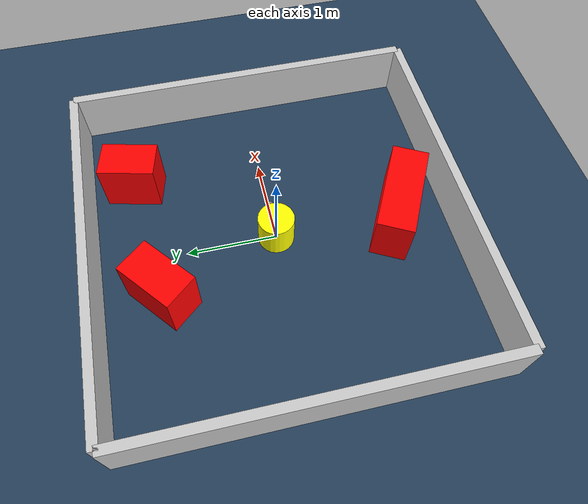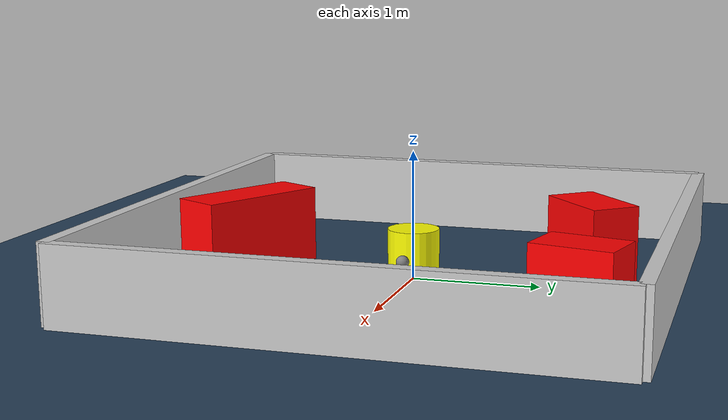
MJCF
<?xml version="1.0" ?>
<mujoco model="generated_environment">
  <option timestep="0.01" integrator="RK4" cone="elliptic"/>
  <default>
    <geom density="1"/>
  </default>
  <asset>
    <texture builtin="gradient" height="3072" rgb1="0.3 0.5 0.7" rgb2="0 0 0" type="skybox" width="512"/>
    <texture builtin="checker" height="300" mark="edge" markrgb="0.8 0.8 0.8" name="groundplane" rgb1="0.2 0.3 0.4" rgb2="0.1 0.2 0.3" type="2d" width="300"/>
    <material name="groundplane" reflectance="0.2" texrepeat="5 5" texture="groundplane" texuniform="true"/>
    <material name="robot" rgba="0.0 1.0 0.0 1"/>
  </asset>
  <worldbody>
    <light dir="0 0 -1" directional="true" pos="0 0 1.5"/>
    <geom condim="4" friction="1.0 0.005 0.001" material="groundplane" name="floor" size="0 0 0.05" type="plane"/>
    <body name="walls">
      <geom name="wall_1" condim="4" pos="-2.0 0.0 0.3" rgba="0.800000011920929 0.800000011920929 0.800000011920929 1.0" size="0.05 2.0 0.3" type="box"/>
      <geom name="wall_2" condim="4" pos="2.0 0.0 0.3" rgba="0.800000011920929 0.800000011920929 0.800000011920929 1.0" size="0.05 2.0 0.3" type="box"/>
      <geom name="wall_3" condim="4" pos="0.0 -2.0 0.3" rgba="0.800000011920929 0.800000011920929 0.800000011920929 1.0" size="2.0 0.05 0.3" type="box"/>
      <geom name="wall_4" condim="4" pos="0.0 2.0 0.3" rgba="0.800000011920929 0.800000011920929 0.800000011920929 1.0" size="2.0 0.05 0.3" type="box"/>
    </body>
    <body name="robot">
      <joint name="joint_x" type="slide" pos="0 0 0" axis="1 0 0"/>
      <joint name="joint_y" type="slide" pos="0 0 0" axis="0 1 0"/>
      <geom name="robot" type="sphere" pos="0.3 0.0 0.2" size="0.05" mass="5." friction="1.0 0.005 0.0001" condim="4" rgba="0.5 0.5 0.5 1.0"/>
      <site name="sensor_ball"/>
    </body>
    <body name="obstacle_movable_1">
      <geom name="obstacle_movable_1" condim="4" pos="0.0 0.0 0.2" euler="0 0 0.0" friction="1.0 0.005 0.001" rgba="1.0 1.0 0.0 1.0" size="0.2 0.2 0.0" type="cylinder" mass="0.1"/>
      <joint type="free"/>
    </body>
    <body name="obstacle_2_static">
      <geom name="obstacle_2_static" condim="4" pos="0.9904643332259635 1.457021968222003 0.3" euler="0 0 76.49218450777829" friction="1.0 0.005 0.001" rgba="1 0 0 1" size="0.3065169991555918 0.2 0.3" type="box"/>
    </body>
    <body name="obstacle_3_static">
      <geom name="obstacle_3_static" condim="4" pos="-0.4751486693270628 1.3117261761310866 0.3" euler="0 0 220.23800154011886" friction="1.0 0.005 0.001" rgba="1 0 0 1" size="0.34023093020494866 0.2 0.3" type="box"/>
    </body>
    <body name="obstacle_4_static">
      <geom name="obstacle_4_static" condim="4" pos="-0.03680808522586365 -1.3860107043553993 0.3" euler="0 0 332.1179502530806" friction="1.0 0.005 0.001" rgba="1 0 0 1" size="0.5286408900780826 0.2 0.3" type="box"/>
    </body>
  </worldbody>
  <actuator>
    <motor name="actuator_x" joint="joint_x" gear="1" ctrlrange="-1 1"/>
    <motor name="actuator_y" joint="joint_y" gear="1" ctrlrange="-1 1"/>
  </actuator>
</mujoco>
